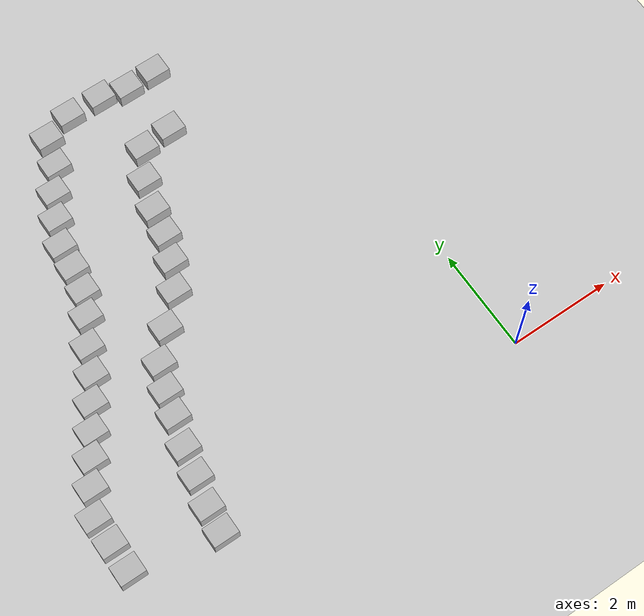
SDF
<sdf version="1.10">
 <world name="empty">
  <model name="ground_plane">
   <static>true</static>
   <link name="link">
    <collision name="collision">
     <geometry><plane><normal>0 0 1</normal><size>100 100</size></plane></geometry>
    </collision>
    <visual name="visual">
     <geometry><plane><normal>0 0 1</normal><size>100 100</size></plane></geometry>
     <material>
      <ambient>0.800000012 0.800000012 0.800000012 1</ambient>
      <diffuse>0.800000012 0.800000012 0.800000012 1</diffuse>
      <specular>0.800000012 0.800000012 0.800000012 1</specular>
     </material>
    </visual>
    <inertial>
     <mass>1</mass>
     <inertia><ixx>1</ixx><ixy>0</ixy><ixz>0</ixz><iyy>1</iyy><iyz>0</iyz><izz>1</izz></inertia>
    </inertial>
   </link>
  </model>
  <model name="cardboard_box_25">
   <pose>-7.80474633593718 0.41818384150236687 0.14999900262897667 -2.5123466248672699e-19 6.9657739388306372e-19 1.209647203754103e-19</pose>
   <link name="link">
    <inertial>
     <mass>2</mass>
     <inertia>
      <ixx>0.041666666999999998</ixx>
      <ixy>0</ixy>
      <ixz>0</ixz>
      <iyy>0.056666666999999997</iyy>
      <iyz>0</iyz>
      <izz>0.068333332999999996</izz>
     </inertia>
    </inertial>
    <collision name="collision">
     <geometry><box><size>0.5 0.40000000000000002 0.29999999999999999</size></box></geometry>
     <surface>
      <friction><ode><mu>1</mu><mu2>1</mu2></ode></friction>
      <contact>
       <ode><kp>10000000</kp><kd>1</kd><min_depth>0.001</min_depth><max_vel>0.10000000000000001</max_vel></ode>
      </contact>
     </surface>
    </collision>
    <visual name="visual">
     <pose>0 0 -0.14999999999999999 0 0 0</pose>
     <geometry>
      <mesh>
       <uri>file:///home/szu/slash_ws/src/slash_sim/gz_models/cardboard_box/model://cardboard_box/meshes/cardboard_box.dae</uri>
       <scale>1.2593189600000001 1.0074551679999999 0.75559137600000004</scale>
      </mesh>
     </geometry>
    </visual>
   </link>
   <static>false</static>
  </model>
  <model name="cardboard_box_26">
   <pose>-7.8033641841289096 0.97415185851638597 0.14999900262897667 -2.4340092493284308e-19 6.9279252550571232e-19 1.2027156982183783e-19</pose>
   <link name="link">
    <inertial>
     <mass>2</mass>
     <inertia>
      <ixx>0.041666666999999998</ixx>
      <ixy>0</ixy>
      <ixz>0</ixz>
      <iyy>0.056666666999999997</iyy>
      <iyz>0</iyz>
      <izz>0.068333332999999996</izz>
     </inertia>
    </inertial>
    <collision name="collision">
     <geometry><box><size>0.5 0.40000000000000002 0.29999999999999999</size></box></geometry>
     <surface>
      <friction><ode><mu>1</mu><mu2>1</mu2></ode></friction>
      <contact>
       <ode><kp>10000000</kp><kd>1</kd><min_depth>0.001</min_depth><max_vel>0.10000000000000001</max_vel></ode>
      </contact>
     </surface>
    </collision>
    <visual name="visual">
     <pose>0 0 -0.14999999999999999 0 0 0</pose>
     <geometry>
      <mesh>
       <uri>file:///home/szu/slash_ws/src/slash_sim/gz_models/cardboard_box/model://cardboard_box/meshes/cardboard_box.dae</uri>
       <scale>1.2593189600000001 1.0074551679999999 0.75559137600000004</scale>
      </mesh>
     </geometry>
    </visual>
   </link>
   <static>false</static>
  </model>
  <model name="cardboard_box_27">
   <pose>-7.8042554135711786 1.5020827816516007 0.14999900262897667 -2.4340092493284308e-19 6.9279252550571232e-19 1.2027156982183783e-19</pose>
   <link name="link">
    <inertial>
     <mass>2</mass>
     <inertia>
      <ixx>0.041666666999999998</ixx>
      <ixy>0</ixy>
      <ixz>0</ixz>
      <iyy>0.056666666999999997</iyy>
      <iyz>0</iyz>
      <izz>0.068333332999999996</izz>
     </inertia>
    </inertial>
    <collision name="collision">
     <geometry><box><size>0.5 0.40000000000000002 0.29999999999999999</size></box></geometry>
     <surface>
      <friction><ode><mu>1</mu><mu2>1</mu2></ode></friction>
      <contact>
       <ode><kp>10000000</kp><kd>1</kd><min_depth>0.001</min_depth><max_vel>0.10000000000000001</max_vel></ode>
      </contact>
     </surface>
    </collision>
    <visual name="visual">
     <pose>0 0 -0.14999999999999999 0 0 0</pose>
     <geometry>
      <mesh>
       <uri>file:///home/szu/slash_ws/src/slash_sim/gz_models/cardboard_box/model://cardboard_box/meshes/cardboard_box.dae</uri>
       <scale>1.2593189600000001 1.0074551679999999 0.75559137600000004</scale>
      </mesh>
     </geometry>
    </visual>
   </link>
   <static>false</static>
  </model>
  <model name="cardboard_box_28">
   <pose>-7.5630610162839229 1.985703490123794 0.14999900262897667 -2.3357004577761139e-19 6.9542138261907904e-19 1.202980850302023e-19</pose>
   <link name="link">
    <inertial>
     <mass>2</mass>
     <inertia>
      <ixx>0.041666666999999998</ixx>
      <ixy>0</ixy>
      <ixz>0</ixz>
      <iyy>0.056666666999999997</iyy>
      <iyz>0</iyz>
      <izz>0.068333332999999996</izz>
     </inertia>
    </inertial>
    <collision name="collision">
     <geometry><box><size>0.5 0.40000000000000002 0.29999999999999999</size></box></geometry>
     <surface>
      <friction><ode><mu>1</mu><mu2>1</mu2></ode></friction>
      <contact>
       <ode><kp>10000000</kp><kd>1</kd><min_depth>0.001</min_depth><max_vel>0.10000000000000001</max_vel></ode>
      </contact>
     </surface>
    </collision>
    <visual name="visual">
     <pose>0 0 -0.14999999999999999 0 0 0</pose>
     <geometry>
      <mesh>
       <uri>file:///home/szu/slash_ws/src/slash_sim/gz_models/cardboard_box/model://cardboard_box/meshes/cardboard_box.dae</uri>
       <scale>1.2593189600000001 1.0074551679999999 0.75559137600000004</scale>
      </mesh>
     </geometry>
    </visual>
   </link>
   <static>false</static>
  </model>
  <model name="cardboard_box_29">
   <pose>-7.2973994380493572 2.4172621034228912 0.14999900262897667 -2.3882218747492828e-19 7.0060126461846494e-19 1.2009065340730555e-19</pose>
   <link name="link">
    <inertial>
     <mass>2</mass>
     <inertia>
      <ixx>0.041666666999999998</ixx>
      <ixy>0</ixy>
      <ixz>0</ixz>
      <iyy>0.056666666999999997</iyy>
      <iyz>0</iyz>
      <izz>0.068333332999999996</izz>
     </inertia>
    </inertial>
    <collision name="collision">
     <geometry><box><size>0.5 0.40000000000000002 0.29999999999999999</size></box></geometry>
     <surface>
      <friction><ode><mu>1</mu><mu2>1</mu2></ode></friction>
      <contact>
       <ode><kp>10000000</kp><kd>1</kd><min_depth>0.001</min_depth><max_vel>0.10000000000000001</max_vel></ode>
      </contact>
     </surface>
    </collision>
    <visual name="visual">
     <pose>0 0 -0.14999999999999999 0 0 0</pose>
     <geometry>
      <mesh>
       <uri>file:///home/szu/slash_ws/src/slash_sim/gz_models/cardboard_box/model://cardboard_box/meshes/cardboard_box.dae</uri>
       <scale>1.2593189600000001 1.0074551679999999 0.75559137600000004</scale>
      </mesh>
     </geometry>
    </visual>
   </link>
   <static>false</static>
  </model>
  <model name="cardboard_box_30">
   <pose>-7.033824914042456 2.8280738555835252 0.14999900262897667 -2.3882218747492828e-19 7.0060126461846494e-19 1.2009065340730555e-19</pose>
   <link name="link">
    <inertial>
     <mass>2</mass>
     <inertia>
      <ixx>0.041666666999999998</ixx>
      <ixy>0</ixy>
      <ixz>0</ixz>
      <iyy>0.056666666999999997</iyy>
      <iyz>0</iyz>
      <izz>0.068333332999999996</izz>
     </inertia>
    </inertial>
    <collision name="collision">
     <geometry><box><size>0.5 0.40000000000000002 0.29999999999999999</size></box></geometry>
     <surface>
      <friction><ode><mu>1</mu><mu2>1</mu2></ode></friction>
      <contact>
       <ode><kp>10000000</kp><kd>1</kd><min_depth>0.001</min_depth><max_vel>0.10000000000000001</max_vel></ode>
      </contact>
     </surface>
    </collision>
    <visual name="visual">
     <pose>0 0 -0.14999999999999999 0 0 0</pose>
     <geometry>
      <mesh>
       <uri>file:///home/szu/slash_ws/src/slash_sim/gz_models/cardboard_box/model://cardboard_box/meshes/cardboard_box.dae</uri>
       <scale>1.2593189600000001 1.0074551679999999 0.75559137600000004</scale>
      </mesh>
     </geometry>
    </visual>
   </link>
   <static>false</static>
  </model>
  <model name="cardboard_box_31">
   <pose>-6.7641940622716392 3.2696522771670624 0.14999900262897667 -2.3882218747492828e-19 7.0060126461846494e-19 1.2009065340730555e-19</pose>
   <link name="link">
    <inertial>
     <mass>2</mass>
     <inertia>
      <ixx>0.041666666999999998</ixx>
      <ixy>0</ixy>
      <ixz>0</ixz>
      <iyy>0.056666666999999997</iyy>
      <iyz>0</iyz>
      <izz>0.068333332999999996</izz>
     </inertia>
    </inertial>
    <collision name="collision">
     <geometry><box><size>0.5 0.40000000000000002 0.29999999999999999</size></box></geometry>
     <surface>
      <friction><ode><mu>1</mu><mu2>1</mu2></ode></friction>
      <contact>
       <ode><kp>10000000</kp><kd>1</kd><min_depth>0.001</min_depth><max_vel>0.10000000000000001</max_vel></ode>
      </contact>
     </surface>
    </collision>
    <visual name="visual">
     <pose>0 0 -0.14999999999999999 0 0 0</pose>
     <geometry>
      <mesh>
       <uri>file:///home/szu/slash_ws/src/slash_sim/gz_models/cardboard_box/model://cardboard_box/meshes/cardboard_box.dae</uri>
       <scale>1.2593189600000001 1.0074551679999999 0.75559137600000004</scale>
      </mesh>
     </geometry>
    </visual>
   </link>
   <static>false</static>
  </model>
  <model name="cardboard_box_32">
   <pose>-6.4820903142630817 3.7104088697933122 0.14999900262897667 -2.3882218747492828e-19 7.0060126461846494e-19 1.2009065340730555e-19</pose>
   <link name="link">
    <inertial>
     <mass>2</mass>
     <inertia>
      <ixx>0.041666666999999998</ixx>
      <ixy>0</ixy>
      <ixz>0</ixz>
      <iyy>0.056666666999999997</iyy>
      <iyz>0</iyz>
      <izz>0.068333332999999996</izz>
     </inertia>
    </inertial>
    <collision name="collision">
     <geometry><box><size>0.5 0.40000000000000002 0.29999999999999999</size></box></geometry>
     <surface>
      <friction><ode><mu>1</mu><mu2>1</mu2></ode></friction>
      <contact>
       <ode><kp>10000000</kp><kd>1</kd><min_depth>0.001</min_depth><max_vel>0.10000000000000001</max_vel></ode>
      </contact>
     </surface>
    </collision>
    <visual name="visual">
     <pose>0 0 -0.14999999999999999 0 0 0</pose>
     <geometry>
      <mesh>
       <uri>file:///home/szu/slash_ws/src/slash_sim/gz_models/cardboard_box/model://cardboard_box/meshes/cardboard_box.dae</uri>
       <scale>1.2593189600000001 1.0074551679999999 0.75559137600000004</scale>
      </mesh>
     </geometry>
    </visual>
   </link>
   <static>false</static>
  </model>
  <model name="cardboard_box_33">
   <pose>-6.2661911381478088 4.198093240340345 0.14999900262897667 -2.3882218747492828e-19 7.0060126461846494e-19 1.2009065340730555e-19</pose>
   <link name="link">
    <inertial>
     <mass>2</mass>
     <inertia>
      <ixx>0.041666666999999998</ixx>
      <ixy>0</ixy>
      <ixz>0</ixz>
      <iyy>0.056666666999999997</iyy>
      <iyz>0</iyz>
      <izz>0.068333332999999996</izz>
     </inertia>
    </inertial>
    <collision name="collision">
     <geometry><box><size>0.5 0.40000000000000002 0.29999999999999999</size></box></geometry>
     <surface>
      <friction><ode><mu>1</mu><mu2>1</mu2></ode></friction>
      <contact>
       <ode><kp>10000000</kp><kd>1</kd><min_depth>0.001</min_depth><max_vel>0.10000000000000001</max_vel></ode>
      </contact>
     </surface>
    </collision>
    <visual name="visual">
     <pose>0 0 -0.14999999999999999 0 0 0</pose>
     <geometry>
      <mesh>
       <uri>file:///home/szu/slash_ws/src/slash_sim/gz_models/cardboard_box/model://cardboard_box/meshes/cardboard_box.dae</uri>
       <scale>1.2593189600000001 1.0074551679999999 0.75559137600000004</scale>
      </mesh>
     </geometry>
    </visual>
   </link>
   <static>false</static>
  </model>
  <model name="cardboard_box_34">
   <pose>-5.9847412661950248 4.6993476645109507 0.14999900262897667 -2.3882218747492828e-19 7.0060126461846494e-19 1.2009065340730555e-19</pose>
   <link name="link">
    <inertial>
     <mass>2</mass>
     <inertia>
      <ixx>0.041666666999999998</ixx>
      <ixy>0</ixy>
      <ixz>0</ixz>
      <iyy>0.056666666999999997</iyy>
      <iyz>0</iyz>
      <izz>0.068333332999999996</izz>
     </inertia>
    </inertial>
    <collision name="collision">
     <geometry><box><size>0.5 0.40000000000000002 0.29999999999999999</size></box></geometry>
     <surface>
      <friction><ode><mu>1</mu><mu2>1</mu2></ode></friction>
      <contact>
       <ode><kp>10000000</kp><kd>1</kd><min_depth>0.001</min_depth><max_vel>0.10000000000000001</max_vel></ode>
      </contact>
     </surface>
    </collision>
    <visual name="visual">
     <pose>0 0 -0.14999999999999999 0 0 0</pose>
     <geometry>
      <mesh>
       <uri>file:///home/szu/slash_ws/src/slash_sim/gz_models/cardboard_box/model://cardboard_box/meshes/cardboard_box.dae</uri>
       <scale>1.2593189600000001 1.0074551679999999 0.75559137600000004</scale>
      </mesh>
     </geometry>
    </visual>
   </link>
   <static>false</static>
  </model>
  <model name="cardboard_box_35">
   <pose>-5.779839515584337 5.1440110480721906 0.14999900262897667 -2.3882218747492828e-19 7.0060126461846494e-19 1.2009065340730555e-19</pose>
   <link name="link">
    <inertial>
     <mass>2</mass>
     <inertia>
      <ixx>0.041666666999999998</ixx>
      <ixy>0</ixy>
      <ixz>0</ixz>
      <iyy>0.056666666999999997</iyy>
      <iyz>0</iyz>
      <izz>0.068333332999999996</izz>
     </inertia>
    </inertial>
    <collision name="collision">
     <geometry><box><size>0.5 0.40000000000000002 0.29999999999999999</size></box></geometry>
     <surface>
      <friction><ode><mu>1</mu><mu2>1</mu2></ode></friction>
      <contact>
       <ode><kp>10000000</kp><kd>1</kd><min_depth>0.001</min_depth><max_vel>0.10000000000000001</max_vel></ode>
      </contact>
     </surface>
    </collision>
    <visual name="visual">
     <pose>0 0 -0.14999999999999999 0 0 0</pose>
     <geometry>
      <mesh>
       <uri>file:///home/szu/slash_ws/src/slash_sim/gz_models/cardboard_box/model://cardboard_box/meshes/cardboard_box.dae</uri>
       <scale>1.2593189600000001 1.0074551679999999 0.75559137600000004</scale>
      </mesh>
     </geometry>
    </visual>
   </link>
   <static>false</static>
  </model>
  <model name="cardboard_box_36">
   <pose>-5.6987492403391578 5.6315323809738178 0.14999900262897667 -2.3882218747492828e-19 7.0060126461846494e-19 1.2009065340730555e-19</pose>
   <link name="link">
    <inertial>
     <mass>2</mass>
     <inertia>
      <ixx>0.041666666999999998</ixx>
      <ixy>0</ixy>
      <ixz>0</ixz>
      <iyy>0.056666666999999997</iyy>
      <iyz>0</iyz>
      <izz>0.068333332999999996</izz>
     </inertia>
    </inertial>
    <collision name="collision">
     <geometry><box><size>0.5 0.40000000000000002 0.29999999999999999</size></box></geometry>
     <surface>
      <friction><ode><mu>1</mu><mu2>1</mu2></ode></friction>
      <contact>
       <ode><kp>10000000</kp><kd>1</kd><min_depth>0.001</min_depth><max_vel>0.10000000000000001</max_vel></ode>
      </contact>
     </surface>
    </collision>
    <visual name="visual">
     <pose>0 0 -0.14999999999999999 0 0 0</pose>
     <geometry>
      <mesh>
       <uri>file:///home/szu/slash_ws/src/slash_sim/gz_models/cardboard_box/model://cardboard_box/meshes/cardboard_box.dae</uri>
       <scale>1.2593189600000001 1.0074551679999999 0.75559137600000004</scale>
      </mesh>
     </geometry>
    </visual>
   </link>
   <static>false</static>
  </model>
  <model name="cardboard_box_37">
   <pose>-5.6519756707910958 6.1165583802820809 0.14999900262897667 -2.3882218747492828e-19 7.0060126461846494e-19 1.2009065340730555e-19</pose>
   <link name="link">
    <inertial>
     <mass>2</mass>
     <inertia>
      <ixx>0.041666666999999998</ixx>
      <ixy>0</ixy>
      <ixz>0</ixz>
      <iyy>0.056666666999999997</iyy>
      <iyz>0</iyz>
      <izz>0.068333332999999996</izz>
     </inertia>
    </inertial>
    <collision name="collision">
     <geometry><box><size>0.5 0.40000000000000002 0.29999999999999999</size></box></geometry>
     <surface>
      <friction><ode><mu>1</mu><mu2>1</mu2></ode></friction>
      <contact>
       <ode><kp>10000000</kp><kd>1</kd><min_depth>0.001</min_depth><max_vel>0.10000000000000001</max_vel></ode>
      </contact>
     </surface>
    </collision>
    <visual name="visual">
     <pose>0 0 -0.14999999999999999 0 0 0</pose>
     <geometry>
      <mesh>
       <uri>file:///home/szu/slash_ws/src/slash_sim/gz_models/cardboard_box/model://cardboard_box/meshes/cardboard_box.dae</uri>
       <scale>1.2593189600000001 1.0074551679999999 0.75559137600000004</scale>
      </mesh>
     </geometry>
    </visual>
   </link>
   <static>false</static>
  </model>
  <model name="cardboard_box_38">
   <pose>-5.4470544108881063 6.6113449371072095 0.14999900262897667 -2.3882218747492828e-19 7.0060126461846494e-19 1.2009065340730555e-19</pose>
   <link name="link">
    <inertial>
     <mass>2</mass>
     <inertia>
      <ixx>0.041666666999999998</ixx>
      <ixy>0</ixy>
      <ixz>0</ixz>
      <iyy>0.056666666999999997</iyy>
      <iyz>0</iyz>
      <izz>0.068333332999999996</izz>
     </inertia>
    </inertial>
    <collision name="collision">
     <geometry><box><size>0.5 0.40000000000000002 0.29999999999999999</size></box></geometry>
     <surface>
      <friction><ode><mu>1</mu><mu2>1</mu2></ode></friction>
      <contact>
       <ode><kp>10000000</kp><kd>1</kd><min_depth>0.001</min_depth><max_vel>0.10000000000000001</max_vel></ode>
      </contact>
     </surface>
    </collision>
    <visual name="visual">
     <pose>0 0 -0.14999999999999999 0 0 0</pose>
     <geometry>
      <mesh>
       <uri>file:///home/szu/slash_ws/src/slash_sim/gz_models/cardboard_box/model://cardboard_box/meshes/cardboard_box.dae</uri>
       <scale>1.2593189600000001 1.0074551679999999 0.75559137600000004</scale>
      </mesh>
     </geometry>
    </visual>
   </link>
   <static>false</static>
  </model>
  <model name="cardboard_box_39">
   <pose>-5.2053894679886898 7.0861486664657543 0.14999900262897667 -2.3882218747492828e-19 7.0060126461846494e-19 1.2009065340730555e-19</pose>
   <link name="link">
    <inertial>
     <mass>2</mass>
     <inertia>
      <ixx>0.041666666999999998</ixx>
      <ixy>0</ixy>
      <ixz>0</ixz>
      <iyy>0.056666666999999997</iyy>
      <iyz>0</iyz>
      <izz>0.068333332999999996</izz>
     </inertia>
    </inertial>
    <collision name="collision">
     <geometry><box><size>0.5 0.40000000000000002 0.29999999999999999</size></box></geometry>
     <surface>
      <friction><ode><mu>1</mu><mu2>1</mu2></ode></friction>
      <contact>
       <ode><kp>10000000</kp><kd>1</kd><min_depth>0.001</min_depth><max_vel>0.10000000000000001</max_vel></ode>
      </contact>
     </surface>
    </collision>
    <visual name="visual">
     <pose>0 0 -0.14999999999999999 0 0 0</pose>
     <geometry>
      <mesh>
       <uri>file:///home/szu/slash_ws/src/slash_sim/gz_models/cardboard_box/model://cardboard_box/meshes/cardboard_box.dae</uri>
       <scale>1.2593189600000001 1.0074551679999999 0.75559137600000004</scale>
      </mesh>
     </geometry>
    </visual>
   </link>
   <static>false</static>
  </model>
  <model name="cardboard_box_40">
   <pose>-4.8934798780719415 7.5553183109960136 0.14999900262897667 -2.3882218747492828e-19 7.0060126461846494e-19 1.2009065340730555e-19</pose>
   <link name="link">
    <inertial>
     <mass>2</mass>
     <inertia>
      <ixx>0.041666666999999998</ixx>
      <ixy>0</ixy>
      <ixz>0</ixz>
      <iyy>0.056666666999999997</iyy>
      <iyz>0</iyz>
      <izz>0.068333332999999996</izz>
     </inertia>
    </inertial>
    <collision name="collision">
     <geometry><box><size>0.5 0.40000000000000002 0.29999999999999999</size></box></geometry>
     <surface>
      <friction><ode><mu>1</mu><mu2>1</mu2></ode></friction>
      <contact>
       <ode><kp>10000000</kp><kd>1</kd><min_depth>0.001</min_depth><max_vel>0.10000000000000001</max_vel></ode>
      </contact>
     </surface>
    </collision>
    <visual name="visual">
     <pose>0 0 -0.14999999999999999 0 0 0</pose>
     <geometry>
      <mesh>
       <uri>file:///home/szu/slash_ws/src/slash_sim/gz_models/cardboard_box/model://cardboard_box/meshes/cardboard_box.dae</uri>
       <scale>1.2593189600000001 1.0074551679999999 0.75559137600000004</scale>
      </mesh>
     </geometry>
    </visual>
   </link>
   <static>false</static>
  </model>
  <model name="cardboard_box_41">
   <pose>-4.7225996279459777 8.117921715791093 0.14999900262897667 -2.4395242167865708e-19 6.9722025691374854e-19 1.1980135226730827e-19</pose>
   <link name="link">
    <inertial>
     <mass>2</mass>
     <inertia>
      <ixx>0.041666666999999998</ixx>
      <ixy>0</ixy>
      <ixz>0</ixz>
      <iyy>0.056666666999999997</iyy>
      <iyz>0</iyz>
      <izz>0.068333332999999996</izz>
     </inertia>
    </inertial>
    <collision name="collision">
     <geometry><box><size>0.5 0.40000000000000002 0.29999999999999999</size></box></geometry>
     <surface>
      <friction><ode><mu>1</mu><mu2>1</mu2></ode></friction>
      <contact>
       <ode><kp>10000000</kp><kd>1</kd><min_depth>0.001</min_depth><max_vel>0.10000000000000001</max_vel></ode>
      </contact>
     </surface>
    </collision>
    <visual name="visual">
     <pose>0 0 -0.14999999999999999 0 0 0</pose>
     <geometry>
      <mesh>
       <uri>file:///home/szu/slash_ws/src/slash_sim/gz_models/cardboard_box/model://cardboard_box/meshes/cardboard_box.dae</uri>
       <scale>1.2593189600000001 1.0074551679999999 0.75559137600000004</scale>
      </mesh>
     </geometry>
    </visual>
   </link>
   <static>false</static>
  </model>
  <model name="cardboard_box_42">
   <pose>-4.1456651927230634 8.3128152517152625 0.14999900262897667 -2.4617464612000854e-19 6.9865286270579585e-19 1.2102648454318151e-19</pose>
   <link name="link">
    <inertial>
     <mass>2</mass>
     <inertia>
      <ixx>0.041666666999999998</ixx>
      <ixy>0</ixy>
      <ixz>0</ixz>
      <iyy>0.056666666999999997</iyy>
      <iyz>0</iyz>
      <izz>0.068333332999999996</izz>
     </inertia>
    </inertial>
    <collision name="collision">
     <geometry><box><size>0.5 0.40000000000000002 0.29999999999999999</size></box></geometry>
     <surface>
      <friction><ode><mu>1</mu><mu2>1</mu2></ode></friction>
      <contact>
       <ode><kp>10000000</kp><kd>1</kd><min_depth>0.001</min_depth><max_vel>0.10000000000000001</max_vel></ode>
      </contact>
     </surface>
    </collision>
    <visual name="visual">
     <pose>0 0 -0.14999999999999999 0 0 0</pose>
     <geometry>
      <mesh>
       <uri>file:///home/szu/slash_ws/src/slash_sim/gz_models/cardboard_box/model://cardboard_box/meshes/cardboard_box.dae</uri>
       <scale>1.2593189600000001 1.0074551679999999 0.75559137600000004</scale>
      </mesh>
     </geometry>
    </visual>
   </link>
   <static>false</static>
  </model>
  <model name="cardboard_box_43">
   <pose>-3.4697532981505943 8.308892118918223 0.14999900262897667 -2.4617464612000854e-19 6.9865286270579585e-19 1.2102648454318151e-19</pose>
   <link name="link">
    <inertial>
     <mass>2</mass>
     <inertia>
      <ixx>0.041666666999999998</ixx>
      <ixy>0</ixy>
      <ixz>0</ixz>
      <iyy>0.056666666999999997</iyy>
      <iyz>0</iyz>
      <izz>0.068333332999999996</izz>
     </inertia>
    </inertial>
    <collision name="collision">
     <geometry><box><size>0.5 0.40000000000000002 0.29999999999999999</size></box></geometry>
     <surface>
      <friction><ode><mu>1</mu><mu2>1</mu2></ode></friction>
      <contact>
       <ode><kp>10000000</kp><kd>1</kd><min_depth>0.001</min_depth><max_vel>0.10000000000000001</max_vel></ode>
      </contact>
     </surface>
    </collision>
    <visual name="visual">
     <pose>0 0 -0.14999999999999999 0 0 0</pose>
     <geometry>
      <mesh>
       <uri>file:///home/szu/slash_ws/src/slash_sim/gz_models/cardboard_box/model://cardboard_box/meshes/cardboard_box.dae</uri>
       <scale>1.2593189600000001 1.0074551679999999 0.75559137600000004</scale>
      </mesh>
     </geometry>
    </visual>
   </link>
   <static>false</static>
  </model>
  <model name="cardboard_box_44">
   <pose>-2.9391439539716036 8.1844800557994972 0.14999900262897667 -2.4395242167865708e-19 6.9722025691374854e-19 1.1980135226730827e-19</pose>
   <link name="link">
    <inertial>
     <mass>2</mass>
     <inertia>
      <ixx>0.041666666999999998</ixx>
      <ixy>0</ixy>
      <ixz>0</ixz>
      <iyy>0.056666666999999997</iyy>
      <iyz>0</iyz>
      <izz>0.068333332999999996</izz>
     </inertia>
    </inertial>
    <collision name="collision">
     <geometry><box><size>0.5 0.40000000000000002 0.29999999999999999</size></box></geometry>
     <surface>
      <friction><ode><mu>1</mu><mu2>1</mu2></ode></friction>
      <contact>
       <ode><kp>10000000</kp><kd>1</kd><min_depth>0.001</min_depth><max_vel>0.10000000000000001</max_vel></ode>
      </contact>
     </surface>
    </collision>
    <visual name="visual">
     <pose>0 0 -0.14999999999999999 0 0 0</pose>
     <geometry>
      <mesh>
       <uri>file:///home/szu/slash_ws/src/slash_sim/gz_models/cardboard_box/model://cardboard_box/meshes/cardboard_box.dae</uri>
       <scale>1.2593189600000001 1.0074551679999999 0.75559137600000004</scale>
      </mesh>
     </geometry>
    </visual>
   </link>
   <static>false</static>
  </model>
  <model name="cardboard_box_45">
   <pose>-2.3493167759027136 8.2031761842762823 0.14999900262897667 -2.4617464612000854e-19 6.9865286270579585e-19 1.2102648454318151e-19</pose>
   <link name="link">
    <inertial>
     <mass>2</mass>
     <inertia>
      <ixx>0.041666666999999998</ixx>
      <ixy>0</ixy>
      <ixz>0</ixz>
      <iyy>0.056666666999999997</iyy>
      <iyz>0</iyz>
      <izz>0.068333332999999996</izz>
     </inertia>
    </inertial>
    <collision name="collision">
     <geometry><box><size>0.5 0.40000000000000002 0.29999999999999999</size></box></geometry>
     <surface>
      <friction><ode><mu>1</mu><mu2>1</mu2></ode></friction>
      <contact>
       <ode><kp>10000000</kp><kd>1</kd><min_depth>0.001</min_depth><max_vel>0.10000000000000001</max_vel></ode>
      </contact>
     </surface>
    </collision>
    <visual name="visual">
     <pose>0 0 -0.14999999999999999 0 0 0</pose>
     <geometry>
      <mesh>
       <uri>file:///home/szu/slash_ws/src/slash_sim/gz_models/cardboard_box/model://cardboard_box/meshes/cardboard_box.dae</uri>
       <scale>1.2593189600000001 1.0074551679999999 0.75559137600000004</scale>
      </mesh>
     </geometry>
    </visual>
   </link>
   <static>false</static>
  </model>
  <model name="cardboard_box_80">
   <pose>-6.1744364846848718 0.085415225641298775 0.14999900262897667 -2.5080923996314153e-19 6.9013454270577445e-19 1.2087524920852755e-19</pose>
   <link name="link">
    <inertial>
     <mass>2</mass>
     <inertia>
      <ixx>0.041666666999999998</ixx>
      <ixy>0</ixy>
      <ixz>0</ixz>
      <iyy>0.056666666999999997</iyy>
      <iyz>0</iyz>
      <izz>0.068333332999999996</izz>
     </inertia>
    </inertial>
    <collision name="collision">
     <geometry><box><size>0.5 0.40000000000000002 0.29999999999999999</size></box></geometry>
     <surface>
      <friction><ode><mu>1</mu><mu2>1</mu2></ode></friction>
      <contact>
       <ode><kp>10000000</kp><kd>1</kd><min_depth>0.001</min_depth><max_vel>0.10000000000000001</max_vel></ode>
      </contact>
     </surface>
    </collision>
    <visual name="visual">
     <pose>0 0 -0.14999999999999999 0 0 0</pose>
     <geometry>
      <mesh>
       <uri>file:///home/szu/slash_ws/src/slash_sim/gz_models/cardboard_box/model://cardboard_box/meshes/cardboard_box.dae</uri>
       <scale>1.2593189600000001 1.0074551679999999 0.75559137600000004</scale>
      </mesh>
     </geometry>
    </visual>
   </link>
   <static>false</static>
  </model>
  <model name="cardboard_box_81">
   <pose>-6.1234080237749975 0.59127764129270188 0.14999900262897667 -2.5123466248672699e-19 6.9657739388306372e-19 1.209647203754103e-19</pose>
   <link name="link">
    <inertial>
     <mass>2</mass>
     <inertia>
      <ixx>0.041666666999999998</ixx>
      <ixy>0</ixy>
      <ixz>0</ixz>
      <iyy>0.056666666999999997</iyy>
      <iyz>0</iyz>
      <izz>0.068333332999999996</izz>
     </inertia>
    </inertial>
    <collision name="collision">
     <geometry><box><size>0.5 0.40000000000000002 0.29999999999999999</size></box></geometry>
     <surface>
      <friction><ode><mu>1</mu><mu2>1</mu2></ode></friction>
      <contact>
       <ode><kp>10000000</kp><kd>1</kd><min_depth>0.001</min_depth><max_vel>0.10000000000000001</max_vel></ode>
      </contact>
     </surface>
    </collision>
    <visual name="visual">
     <pose>0 0 -0.14999999999999999 0 0 0</pose>
     <geometry>
      <mesh>
       <uri>file:///home/szu/slash_ws/src/slash_sim/gz_models/cardboard_box/model://cardboard_box/meshes/cardboard_box.dae</uri>
       <scale>1.2593189600000001 1.0074551679999999 0.75559137600000004</scale>
      </mesh>
     </geometry>
    </visual>
   </link>
   <static>false</static>
  </model>
  <model name="cardboard_box_82">
   <pose>-5.9859349166709226 1.1474305837438694 0.14999900262897667 -2.4340092493284308e-19 6.9279252550571232e-19 1.2027156982183783e-19</pose>
   <link name="link">
    <inertial>
     <mass>2</mass>
     <inertia>
      <ixx>0.041666666999999998</ixx>
      <ixy>0</ixy>
      <ixz>0</ixz>
      <iyy>0.056666666999999997</iyy>
      <iyz>0</iyz>
      <izz>0.068333332999999996</izz>
     </inertia>
    </inertial>
    <collision name="collision">
     <geometry><box><size>0.5 0.40000000000000002 0.29999999999999999</size></box></geometry>
     <surface>
      <friction><ode><mu>1</mu><mu2>1</mu2></ode></friction>
      <contact>
       <ode><kp>10000000</kp><kd>1</kd><min_depth>0.001</min_depth><max_vel>0.10000000000000001</max_vel></ode>
      </contact>
     </surface>
    </collision>
    <visual name="visual">
     <pose>0 0 -0.14999999999999999 0 0 0</pose>
     <geometry>
      <mesh>
       <uri>file:///home/szu/slash_ws/src/slash_sim/gz_models/cardboard_box/model://cardboard_box/meshes/cardboard_box.dae</uri>
       <scale>1.2593189600000001 1.0074551679999999 0.75559137600000004</scale>
      </mesh>
     </geometry>
    </visual>
   </link>
   <static>false</static>
  </model>
  <model name="cardboard_box_83">
   <pose>-5.8790273659146886 1.6966186364131253 0.14999900262897667 -2.4340092493284308e-19 6.9279252550571232e-19 1.2027156982183783e-19</pose>
   <link name="link">
    <inertial>
     <mass>2</mass>
     <inertia>
      <ixx>0.041666666999999998</ixx>
      <ixy>0</ixy>
      <ixz>0</ixz>
      <iyy>0.056666666999999997</iyy>
      <iyz>0</iyz>
      <izz>0.068333332999999996</izz>
     </inertia>
    </inertial>
    <collision name="collision">
     <geometry><box><size>0.5 0.40000000000000002 0.29999999999999999</size></box></geometry>
     <surface>
      <friction><ode><mu>1</mu><mu2>1</mu2></ode></friction>
      <contact>
       <ode><kp>10000000</kp><kd>1</kd><min_depth>0.001</min_depth><max_vel>0.10000000000000001</max_vel></ode>
      </contact>
     </surface>
    </collision>
    <visual name="visual">
     <pose>0 0 -0.14999999999999999 0 0 0</pose>
     <geometry>
      <mesh>
       <uri>file:///home/szu/slash_ws/src/slash_sim/gz_models/cardboard_box/model://cardboard_box/meshes/cardboard_box.dae</uri>
       <scale>1.2593189600000001 1.0074551679999999 0.75559137600000004</scale>
      </mesh>
     </geometry>
    </visual>
   </link>
   <static>false</static>
  </model>
  <model name="cardboard_box_84">
   <pose>-5.7156764988890982 2.265457300535441 0.14999900262897667 -2.3882218747492828e-19 7.0060126461846494e-19 1.2009065340730555e-19</pose>
   <link name="link">
    <inertial>
     <mass>2</mass>
     <inertia>
      <ixx>0.041666666999999998</ixx>
      <ixy>0</ixy>
      <ixz>0</ixz>
      <iyy>0.056666666999999997</iyy>
      <iyz>0</iyz>
      <izz>0.068333332999999996</izz>
     </inertia>
    </inertial>
    <collision name="collision">
     <geometry><box><size>0.5 0.40000000000000002 0.29999999999999999</size></box></geometry>
     <surface>
      <friction><ode><mu>1</mu><mu2>1</mu2></ode></friction>
      <contact>
       <ode><kp>10000000</kp><kd>1</kd><min_depth>0.001</min_depth><max_vel>0.10000000000000001</max_vel></ode>
      </contact>
     </surface>
    </collision>
    <visual name="visual">
     <pose>0 0 -0.14999999999999999 0 0 0</pose>
     <geometry>
      <mesh>
       <uri>file:///home/szu/slash_ws/src/slash_sim/gz_models/cardboard_box/model://cardboard_box/meshes/cardboard_box.dae</uri>
       <scale>1.2593189600000001 1.0074551679999999 0.75559137600000004</scale>
      </mesh>
     </geometry>
    </visual>
   </link>
   <static>false</static>
  </model>
  <model name="cardboard_box_85">
   <pose>-5.5810729493182416 2.734377348563902 0.14999900262897667 -2.3882218747492828e-19 7.0060126461846494e-19 1.2009065340730555e-19</pose>
   <link name="link">
    <inertial>
     <mass>2</mass>
     <inertia>
      <ixx>0.041666666999999998</ixx>
      <ixy>0</ixy>
      <ixz>0</ixz>
      <iyy>0.056666666999999997</iyy>
      <iyz>0</iyz>
      <izz>0.068333332999999996</izz>
     </inertia>
    </inertial>
    <collision name="collision">
     <geometry><box><size>0.5 0.40000000000000002 0.29999999999999999</size></box></geometry>
     <surface>
      <friction><ode><mu>1</mu><mu2>1</mu2></ode></friction>
      <contact>
       <ode><kp>10000000</kp><kd>1</kd><min_depth>0.001</min_depth><max_vel>0.10000000000000001</max_vel></ode>
      </contact>
     </surface>
    </collision>
    <visual name="visual">
     <pose>0 0 -0.14999999999999999 0 0 0</pose>
     <geometry>
      <mesh>
       <uri>file:///home/szu/slash_ws/src/slash_sim/gz_models/cardboard_box/model://cardboard_box/meshes/cardboard_box.dae</uri>
       <scale>1.2593189600000001 1.0074551679999999 0.75559137600000004</scale>
      </mesh>
     </geometry>
    </visual>
   </link>
   <static>false</static>
  </model>
  <model name="cardboard_box_86">
   <pose>-5.3928813234694113 3.220030544833191 0.14999900262897667 -2.3882218747492828e-19 7.0060126461846494e-19 1.2009065340730555e-19</pose>
   <link name="link">
    <inertial>
     <mass>2</mass>
     <inertia>
      <ixx>0.041666666999999998</ixx>
      <ixy>0</ixy>
      <ixz>0</ixz>
      <iyy>0.056666666999999997</iyy>
      <iyz>0</iyz>
      <izz>0.068333332999999996</izz>
     </inertia>
    </inertial>
    <collision name="collision">
     <geometry><box><size>0.5 0.40000000000000002 0.29999999999999999</size></box></geometry>
     <surface>
      <friction><ode><mu>1</mu><mu2>1</mu2></ode></friction>
      <contact>
       <ode><kp>10000000</kp><kd>1</kd><min_depth>0.001</min_depth><max_vel>0.10000000000000001</max_vel></ode>
      </contact>
     </surface>
    </collision>
    <visual name="visual">
     <pose>0 0 -0.14999999999999999 0 0 0</pose>
     <geometry>
      <mesh>
       <uri>file:///home/szu/slash_ws/src/slash_sim/gz_models/cardboard_box/model://cardboard_box/meshes/cardboard_box.dae</uri>
       <scale>1.2593189600000001 1.0074551679999999 0.75559137600000004</scale>
      </mesh>
     </geometry>
    </visual>
   </link>
   <static>false</static>
  </model>
  <model name="cardboard_box_87">
   <pose>-4.9484713153008979 3.7167220643390824 0.14999900262897667 -2.3882218747492828e-19 7.0060126461846494e-19 1.2009065340730555e-19</pose>
   <link name="link">
    <inertial>
     <mass>2</mass>
     <inertia>
      <ixx>0.041666666999999998</ixx>
      <ixy>0</ixy>
      <ixz>0</ixz>
      <iyy>0.056666666999999997</iyy>
      <iyz>0</iyz>
      <izz>0.068333332999999996</izz>
     </inertia>
    </inertial>
    <collision name="collision">
     <geometry><box><size>0.5 0.40000000000000002 0.29999999999999999</size></box></geometry>
     <surface>
      <friction><ode><mu>1</mu><mu2>1</mu2></ode></friction>
      <contact>
       <ode><kp>10000000</kp><kd>1</kd><min_depth>0.001</min_depth><max_vel>0.10000000000000001</max_vel></ode>
      </contact>
     </surface>
    </collision>
    <visual name="visual">
     <pose>0 0 -0.14999999999999999 0 0 0</pose>
     <geometry>
      <mesh>
       <uri>file:///home/szu/slash_ws/src/slash_sim/gz_models/cardboard_box/model://cardboard_box/meshes/cardboard_box.dae</uri>
       <scale>1.2593189600000001 1.0074551679999999 0.75559137600000004</scale>
      </mesh>
     </geometry>
    </visual>
   </link>
   <static>false</static>
  </model>
  <model name="cardboard_box_88">
   <pose>-4.4409094697911522 4.2252803720434562 0.14999900262897667 -2.3882218747492828e-19 7.0060126461846494e-19 1.2009065340730555e-19</pose>
   <link name="link">
    <inertial>
     <mass>2</mass>
     <inertia>
      <ixx>0.041666666999999998</ixx>
      <ixy>0</ixy>
      <ixz>0</ixz>
      <iyy>0.056666666999999997</iyy>
      <iyz>0</iyz>
      <izz>0.068333332999999996</izz>
     </inertia>
    </inertial>
    <collision name="collision">
     <geometry><box><size>0.5 0.40000000000000002 0.29999999999999999</size></box></geometry>
     <surface>
      <friction><ode><mu>1</mu><mu2>1</mu2></ode></friction>
      <contact>
       <ode><kp>10000000</kp><kd>1</kd><min_depth>0.001</min_depth><max_vel>0.10000000000000001</max_vel></ode>
      </contact>
     </surface>
    </collision>
    <visual name="visual">
     <pose>0 0 -0.14999999999999999 0 0 0</pose>
     <geometry>
      <mesh>
       <uri>file:///home/szu/slash_ws/src/slash_sim/gz_models/cardboard_box/model://cardboard_box/meshes/cardboard_box.dae</uri>
       <scale>1.2593189600000001 1.0074551679999999 0.75559137600000004</scale>
      </mesh>
     </geometry>
    </visual>
   </link>
   <static>false</static>
  </model>
  <model name="cardboard_box_89">
   <pose>-4.1761247683674574 4.7447212340258433 0.14999900262897667 -2.3882218747492828e-19 7.0060126461846494e-19 1.2009065340730555e-19</pose>
   <link name="link">
    <inertial>
     <mass>2</mass>
     <inertia>
      <ixx>0.041666666999999998</ixx>
      <ixy>0</ixy>
      <ixz>0</ixz>
      <iyy>0.056666666999999997</iyy>
      <iyz>0</iyz>
      <izz>0.068333332999999996</izz>
     </inertia>
    </inertial>
    <collision name="collision">
     <geometry><box><size>0.5 0.40000000000000002 0.29999999999999999</size></box></geometry>
     <surface>
      <friction><ode><mu>1</mu><mu2>1</mu2></ode></friction>
      <contact>
       <ode><kp>10000000</kp><kd>1</kd><min_depth>0.001</min_depth><max_vel>0.10000000000000001</max_vel></ode>
      </contact>
     </surface>
    </collision>
    <visual name="visual">
     <pose>0 0 -0.14999999999999999 0 0 0</pose>
     <geometry>
      <mesh>
       <uri>file:///home/szu/slash_ws/src/slash_sim/gz_models/cardboard_box/model://cardboard_box/meshes/cardboard_box.dae</uri>
       <scale>1.2593189600000001 1.0074551679999999 0.75559137600000004</scale>
      </mesh>
     </geometry>
    </visual>
   </link>
   <static>false</static>
  </model>
  <model name="cardboard_box_90">
   <pose>-3.986600561555993 5.2517876278255269 0.14999900262897667 -2.3882218747492828e-19 7.0060126461846494e-19 1.2009065340730555e-19</pose>
   <link name="link">
    <inertial>
     <mass>2</mass>
     <inertia>
      <ixx>0.041666666999999998</ixx>
      <ixy>0</ixy>
      <ixz>0</ixz>
      <iyy>0.056666666999999997</iyy>
      <iyz>0</iyz>
      <izz>0.068333332999999996</izz>
     </inertia>
    </inertial>
    <collision name="collision">
     <geometry><box><size>0.5 0.40000000000000002 0.29999999999999999</size></box></geometry>
     <surface>
      <friction><ode><mu>1</mu><mu2>1</mu2></ode></friction>
      <contact>
       <ode><kp>10000000</kp><kd>1</kd><min_depth>0.001</min_depth><max_vel>0.10000000000000001</max_vel></ode>
      </contact>
     </surface>
    </collision>
    <visual name="visual">
     <pose>0 0 -0.14999999999999999 0 0 0</pose>
     <geometry>
      <mesh>
       <uri>file:///home/szu/slash_ws/src/slash_sim/gz_models/cardboard_box/model://cardboard_box/meshes/cardboard_box.dae</uri>
       <scale>1.2593189600000001 1.0074551679999999 0.75559137600000004</scale>
      </mesh>
     </geometry>
    </visual>
   </link>
   <static>false</static>
  </model>
  <model name="cardboard_box_91">
   <pose>-3.888549339899364 5.7875153549178124 0.14999900262897667 -2.3882218747492828e-19 7.0060126461846494e-19 1.2009065340730555e-19</pose>
   <link name="link">
    <inertial>
     <mass>2</mass>
     <inertia>
      <ixx>0.041666666999999998</ixx>
      <ixy>0</ixy>
      <ixz>0</ixz>
      <iyy>0.056666666999999997</iyy>
      <iyz>0</iyz>
      <izz>0.068333332999999996</izz>
     </inertia>
    </inertial>
    <collision name="collision">
     <geometry><box><size>0.5 0.40000000000000002 0.29999999999999999</size></box></geometry>
     <surface>
      <friction><ode><mu>1</mu><mu2>1</mu2></ode></friction>
      <contact>
       <ode><kp>10000000</kp><kd>1</kd><min_depth>0.001</min_depth><max_vel>0.10000000000000001</max_vel></ode>
      </contact>
     </surface>
    </collision>
    <visual name="visual">
     <pose>0 0 -0.14999999999999999 0 0 0</pose>
     <geometry>
      <mesh>
       <uri>file:///home/szu/slash_ws/src/slash_sim/gz_models/cardboard_box/model://cardboard_box/meshes/cardboard_box.dae</uri>
       <scale>1.2593189600000001 1.0074551679999999 0.75559137600000004</scale>
      </mesh>
     </geometry>
    </visual>
   </link>
   <static>false</static>
  </model>
  <model name="cardboard_box_92">
   <pose>-3.6972427316813778 6.3804104422747576 0.14999900262897667 -2.3882218747492828e-19 7.0060126461846494e-19 1.2009065340730555e-19</pose>
   <link name="link">
    <inertial>
     <mass>2</mass>
     <inertia>
      <ixx>0.041666666999999998</ixx>
      <ixy>0</ixy>
      <ixz>0</ixz>
      <iyy>0.056666666999999997</iyy>
      <iyz>0</iyz>
      <izz>0.068333332999999996</izz>
     </inertia>
    </inertial>
    <collision name="collision">
     <geometry><box><size>0.5 0.40000000000000002 0.29999999999999999</size></box></geometry>
     <surface>
      <friction><ode><mu>1</mu><mu2>1</mu2></ode></friction>
      <contact>
       <ode><kp>10000000</kp><kd>1</kd><min_depth>0.001</min_depth><max_vel>0.10000000000000001</max_vel></ode>
      </contact>
     </surface>
    </collision>
    <visual name="visual">
     <pose>0 0 -0.14999999999999999 0 0 0</pose>
     <geometry>
      <mesh>
       <uri>file:///home/szu/slash_ws/src/slash_sim/gz_models/cardboard_box/model://cardboard_box/meshes/cardboard_box.dae</uri>
       <scale>1.2593189600000001 1.0074551679999999 0.75559137600000004</scale>
      </mesh>
     </geometry>
    </visual>
   </link>
   <static>false</static>
  </model>
  <model name="cardboard_box_93">
   <pose>-3.3783266948639126 6.9495017032266713 0.14999900262897667 -2.3882218747492828e-19 7.0060126461846494e-19 1.2009065340730555e-19</pose>
   <link name="link">
    <inertial>
     <mass>2</mass>
     <inertia>
      <ixx>0.041666666999999998</ixx>
      <ixy>0</ixy>
      <ixz>0</ixz>
      <iyy>0.056666666999999997</iyy>
      <iyz>0</iyz>
      <izz>0.068333332999999996</izz>
     </inertia>
    </inertial>
    <collision name="collision">
     <geometry><box><size>0.5 0.40000000000000002 0.29999999999999999</size></box></geometry>
     <surface>
      <friction><ode><mu>1</mu><mu2>1</mu2></ode></friction>
      <contact>
       <ode><kp>10000000</kp><kd>1</kd><min_depth>0.001</min_depth><max_vel>0.10000000000000001</max_vel></ode>
      </contact>
     </surface>
    </collision>
    <visual name="visual">
     <pose>0 0 -0.14999999999999999 0 0 0</pose>
     <geometry>
      <mesh>
       <uri>file:///home/szu/slash_ws/src/slash_sim/gz_models/cardboard_box/model://cardboard_box/meshes/cardboard_box.dae</uri>
       <scale>1.2593189600000001 1.0074551679999999 0.75559137600000004</scale>
      </mesh>
     </geometry>
    </visual>
   </link>
   <static>false</static>
  </model>
  <model name="cardboard_box_94">
   <pose>-2.7597514784525465 7.0133169327573404 0.14999900262897667 -2.3882218747492828e-19 7.0060126461846494e-19 1.2009065340730555e-19</pose>
   <link name="link">
    <inertial>
     <mass>2</mass>
     <inertia>
      <ixx>0.041666666999999998</ixx>
      <ixy>0</ixy>
      <ixz>0</ixz>
      <iyy>0.056666666999999997</iyy>
      <iyz>0</iyz>
      <izz>0.068333332999999996</izz>
     </inertia>
    </inertial>
    <collision name="collision">
     <geometry><box><size>0.5 0.40000000000000002 0.29999999999999999</size></box></geometry>
     <surface>
      <friction><ode><mu>1</mu><mu2>1</mu2></ode></friction>
      <contact>
       <ode><kp>10000000</kp><kd>1</kd><min_depth>0.001</min_depth><max_vel>0.10000000000000001</max_vel></ode>
      </contact>
     </surface>
    </collision>
    <visual name="visual">
     <pose>0 0 -0.14999999999999999 0 0 0</pose>
     <geometry>
      <mesh>
       <uri>file:///home/szu/slash_ws/src/slash_sim/gz_models/cardboard_box/model://cardboard_box/meshes/cardboard_box.dae</uri>
       <scale>1.2593189600000001 1.0074551679999999 0.75559137600000004</scale>
      </mesh>
     </geometry>
    </visual>
   </link>
   <static>false</static>
  </model>
 </world>
</sdf>
